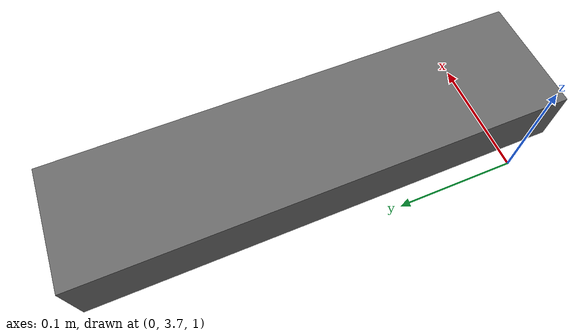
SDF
<?xml version="1.0" ?>
<!-- tmp sdf file generated from LISDF -->
<sdf version="1.9">
  <world name="tmp_world">

<model name="sink_counter_back">
  <static>True</static>
  <pose>0.06300000101327896 3.8529999256134033 1.0260000228881836 0.0 -0.0 0.0</pose>
  <link name="box">

    <inertial>
      <mass>0</mass>
      <pose>0.0 0.0 0.0 0.0 -0.0 0.0</pose>
      <inertia>
        <ixx>0</ixx>
        <ixy>0</ixy>
        <ixz>0</ixz>
        <iyy>0</iyy>
        <iyz>0</iyz>
        <izz>0</izz>
      </inertia>
    </inertial>
    <collision name="box_collision">>
      <pose>0.0 0.0 0.0 0.0 -0.0 0.0</pose>
      <geometry>
        <box>
          <size>0.09799999743700027 0.3930000066757202 0.05000000074505806</size>
        </box>
      </geometry>

    </collision>
    <visual name="box_visual">
      <pose>0.0 0.0 0.0 0.0 -0.0 0.0</pose>
      <geometry>
        <box>
          <size>0.09799999743700027 0.3930000066757202 0.05000000074505806</size>
        </box>
      </geometry>
      <material>
        <ambient>1.0 1.0 1.0 1.0</ambient>
        <diffuse>0.4000000059604645 0.4000000059604645 0.4000000059604645 1.0</diffuse>
        <specular>0.0 0.0 0.0 1.0</specular>
        <emissive>0.0 0.0 0.0 1.0</emissive>
      </material>
      <cast_shadows>True</cast_shadows>
    </visual>
    <self_collide>True</self_collide>
  </link>

</model>

  </world>
</sdf>
